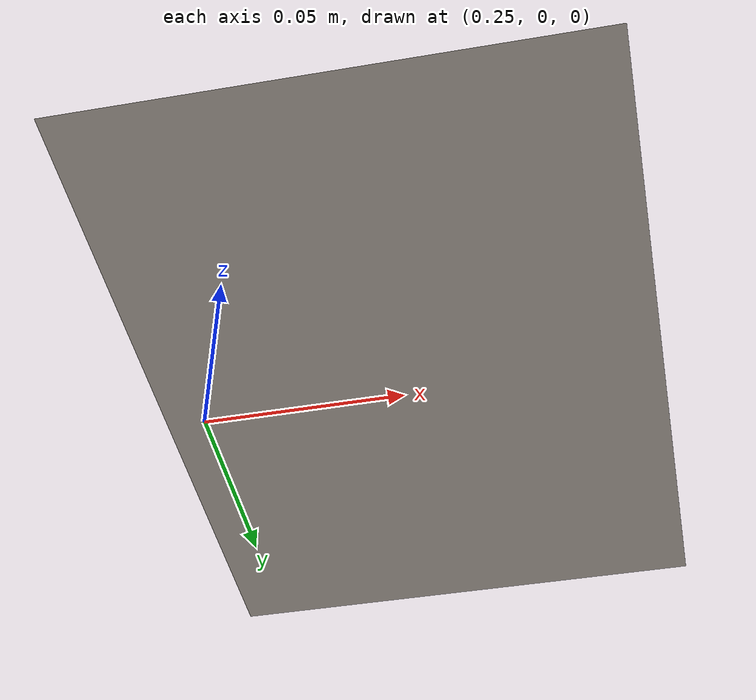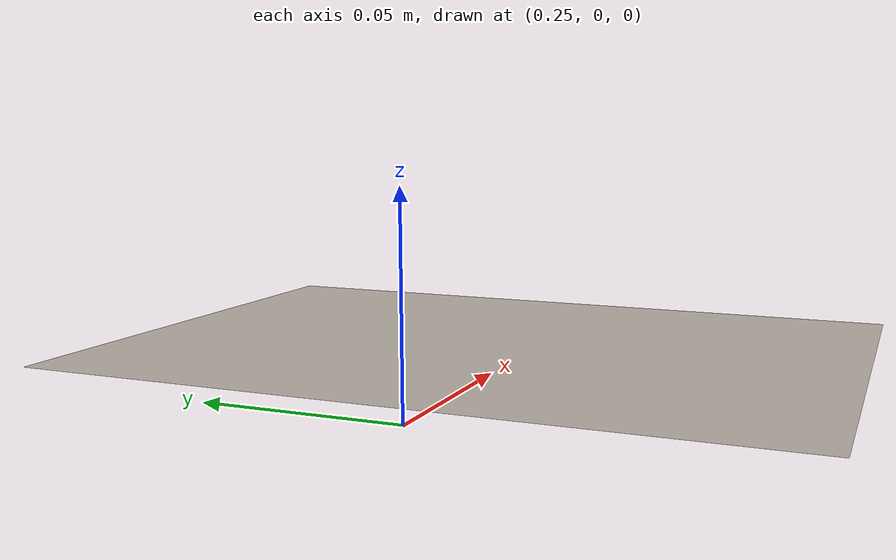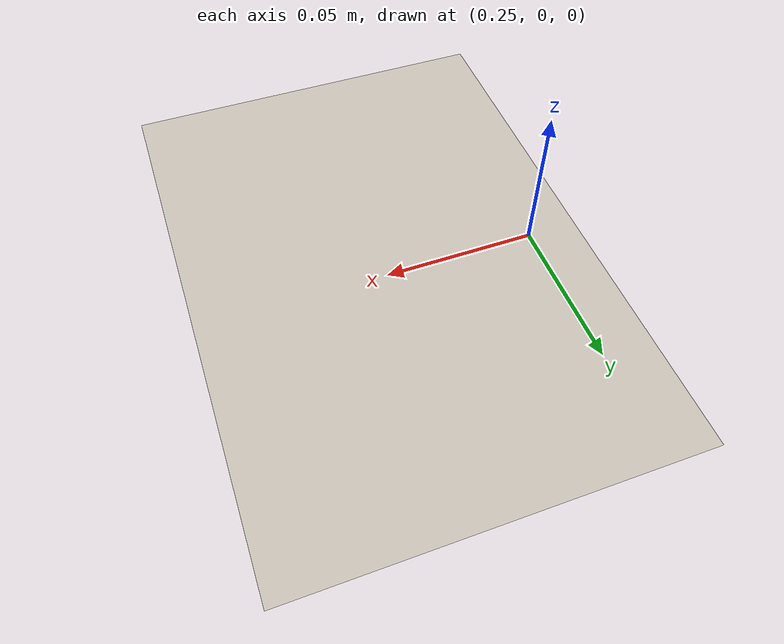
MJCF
<mujoco model="obj_board">
    <asset>
        <texture name="drawing_tex" type="2d" file="./assets/drawing_board_template.png"/>
        <material name="drawing_mat" texture="drawing_tex" texrepeat="0 0"/>
        <mesh name="board_mesh" file="./assets/board.obj" inertia="shell"/>
    </asset>
    <worldbody>
        <body name="obj_board" pos="0.3 0 0.0025" euler="0 0 0">
            <geom name="obj_board_geom" type="mesh" mesh="board_mesh" pos="0 0.0 0.0025" material="drawing_mat"/>

            <inertial pos="0 0 0" mass="1" diaginertia="0.1 0.1 0.1" />
        </body>
    </worldbody>
</mujoco>
